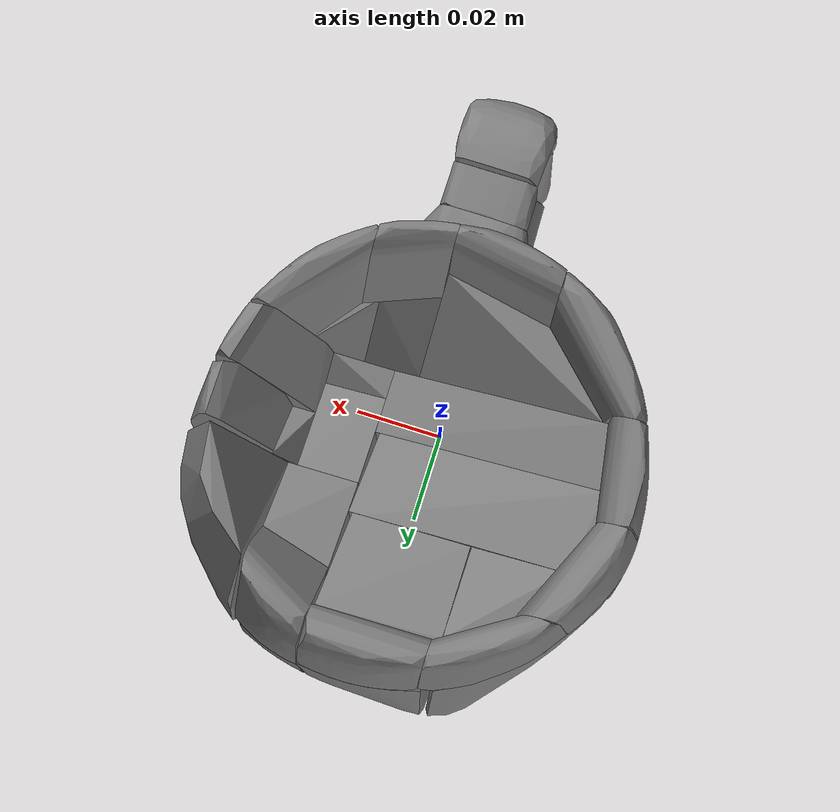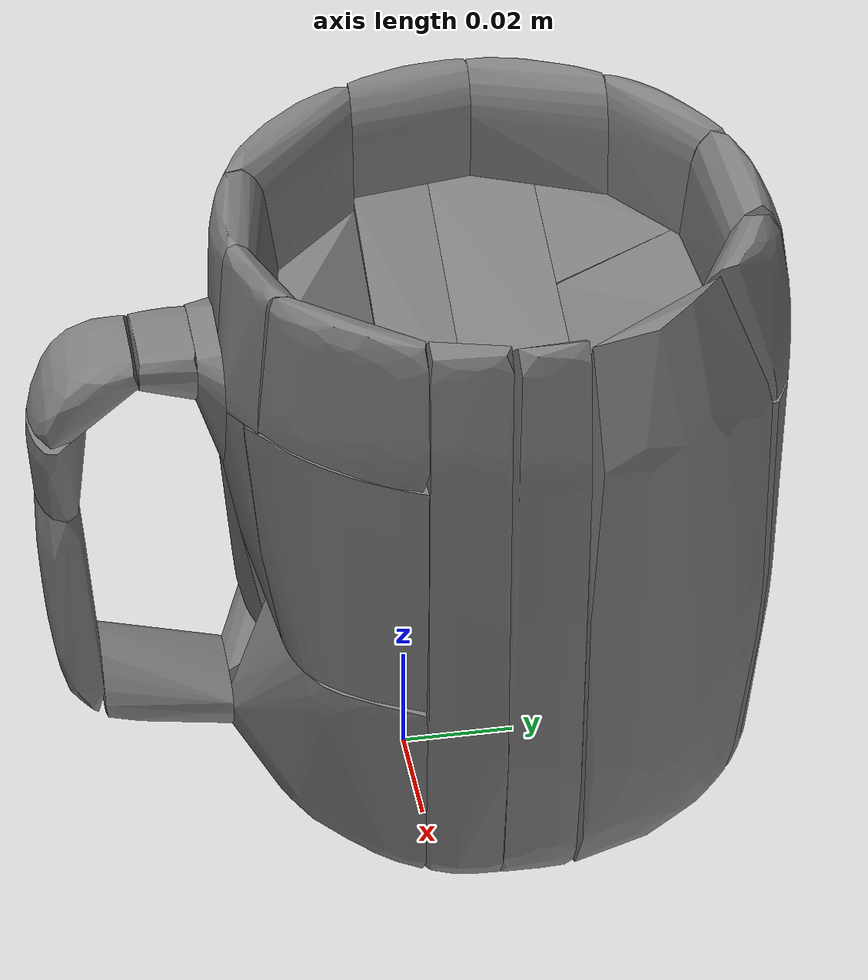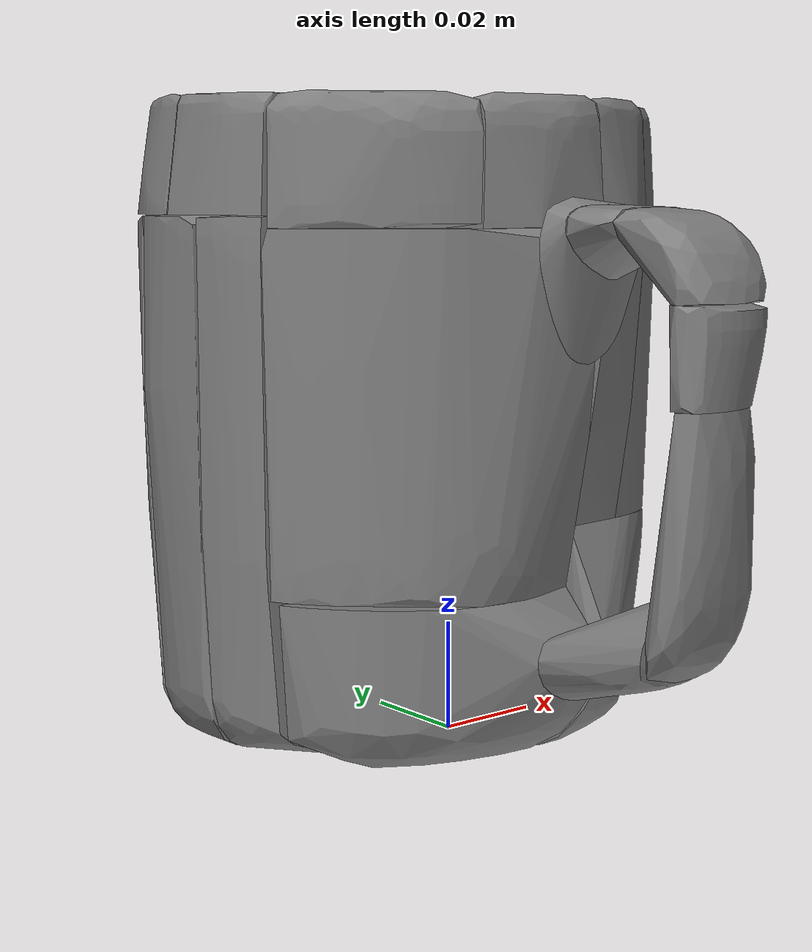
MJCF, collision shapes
<mujoco model="cup">
  <asset>
    <texture type="2d" name="cup_tex" file="Texture.png"/>
    <material name="cup_mat" texture="cup_tex" specular="0.3" shininess="0.1"/>
    <mesh name="cup_vis" file="cup_libero.obj" scale="1 1 1"/>
    <mesh name="cup_col_0" file="cup_col_0.obj" scale="1 1 1"/>
    <mesh name="cup_col_1" file="cup_col_1.obj" scale="1 1 1"/>
    <mesh name="cup_col_2" file="cup_col_2.obj" scale="1 1 1"/>
    <mesh name="cup_col_3" file="cup_col_3.obj" scale="1 1 1"/>
    <mesh name="cup_col_4" file="cup_col_4.obj" scale="1 1 1"/>
    <mesh name="cup_col_5" file="cup_col_5.obj" scale="1 1 1"/>
    <mesh name="cup_col_6" file="cup_col_6.obj" scale="1 1 1"/>
    <mesh name="cup_col_7" file="cup_col_7.obj" scale="1 1 1"/>
    <mesh name="cup_col_8" file="cup_col_8.obj" scale="1 1 1"/>
    <mesh name="cup_col_9" file="cup_col_9.obj" scale="1 1 1"/>
    <mesh name="cup_col_10" file="cup_col_10.obj" scale="1 1 1"/>
    <mesh name="cup_col_11" file="cup_col_11.obj" scale="1 1 1"/>
    <mesh name="cup_col_12" file="cup_col_12.obj" scale="1 1 1"/>
    <mesh name="cup_col_13" file="cup_col_13.obj" scale="1 1 1"/>
    <mesh name="cup_col_14" file="cup_col_14.obj" scale="1 1 1"/>
    <mesh name="cup_col_15" file="cup_col_15.obj" scale="1 1 1"/>
    <mesh name="cup_col_16" file="cup_col_16.obj" scale="1 1 1"/>
    <mesh name="cup_col_17" file="cup_col_17.obj" scale="1 1 1"/>
    <mesh name="cup_col_18" file="cup_col_18.obj" scale="1 1 1"/>
    <mesh name="cup_col_19" file="cup_col_19.obj" scale="1 1 1"/>
    <mesh name="cup_col_20" file="cup_col_20.obj" scale="1 1 1"/>
    <mesh name="cup_col_21" file="cup_col_21.obj" scale="1 1 1"/>
    <mesh name="cup_col_22" file="cup_col_22.obj" scale="1 1 1"/>
    <mesh name="cup_col_23" file="cup_col_23.obj" scale="1 1 1"/>
    <mesh name="cup_col_24" file="cup_col_24.obj" scale="1 1 1"/>
    <mesh name="cup_col_25" file="cup_col_25.obj" scale="1 1 1"/>
    <mesh name="cup_col_26" file="cup_col_26.obj" scale="1 1 1"/>
    <mesh name="cup_col_27" file="cup_col_27.obj" scale="1 1 1"/>
    <mesh name="cup_col_28" file="cup_col_28.obj" scale="1 1 1"/>
    <mesh name="cup_col_29" file="cup_col_29.obj" scale="1 1 1"/>
    <mesh name="cup_col_30" file="cup_col_30.obj" scale="1 1 1"/>
  </asset>
  <worldbody>
    <body>
      <body name="object">
        <geom type="mesh" mesh="cup_vis" material="cup_mat" group="1" contype="0" conaffinity="0"/>
        <geom type="mesh" mesh="cup_col_0" group="0" density="100" friction="0.95 0.3 0.1" solimp="0.998 0.998 0.001" solref="0.001 1"/>
        <geom type="mesh" mesh="cup_col_1" group="0" density="100" friction="0.95 0.3 0.1" solimp="0.998 0.998 0.001" solref="0.001 1"/>
        <geom type="mesh" mesh="cup_col_2" group="0" density="100" friction="0.95 0.3 0.1" solimp="0.998 0.998 0.001" solref="0.001 1"/>
        <geom type="mesh" mesh="cup_col_3" group="0" density="100" friction="0.95 0.3 0.1" solimp="0.998 0.998 0.001" solref="0.001 1"/>
        <geom type="mesh" mesh="cup_col_4" group="0" density="100" friction="0.95 0.3 0.1" solimp="0.998 0.998 0.001" solref="0.001 1"/>
        <geom type="mesh" mesh="cup_col_5" group="0" density="100" friction="0.95 0.3 0.1" solimp="0.998 0.998 0.001" solref="0.001 1"/>
        <geom type="mesh" mesh="cup_col_6" group="0" density="100" friction="0.95 0.3 0.1" solimp="0.998 0.998 0.001" solref="0.001 1"/>
        <geom type="mesh" mesh="cup_col_7" group="0" density="100" friction="0.95 0.3 0.1" solimp="0.998 0.998 0.001" solref="0.001 1"/>
        <geom type="mesh" mesh="cup_col_8" group="0" density="100" friction="0.95 0.3 0.1" solimp="0.998 0.998 0.001" solref="0.001 1"/>
        <geom type="mesh" mesh="cup_col_9" group="0" density="100" friction="0.95 0.3 0.1" solimp="0.998 0.998 0.001" solref="0.001 1"/>
        <geom type="mesh" mesh="cup_col_10" group="0" density="100" friction="0.95 0.3 0.1" solimp="0.998 0.998 0.001" solref="0.001 1"/>
        <geom type="mesh" mesh="cup_col_11" group="0" density="100" friction="0.95 0.3 0.1" solimp="0.998 0.998 0.001" solref="0.001 1"/>
        <geom type="mesh" mesh="cup_col_12" group="0" density="100" friction="0.95 0.3 0.1" solimp="0.998 0.998 0.001" solref="0.001 1"/>
        <geom type="mesh" mesh="cup_col_13" group="0" density="100" friction="0.95 0.3 0.1" solimp="0.998 0.998 0.001" solref="0.001 1"/>
        <geom type="mesh" mesh="cup_col_14" group="0" density="100" friction="0.95 0.3 0.1" solimp="0.998 0.998 0.001" solref="0.001 1"/>
        <geom type="mesh" mesh="cup_col_15" group="0" density="100" friction="0.95 0.3 0.1" solimp="0.998 0.998 0.001" solref="0.001 1"/>
        <geom type="mesh" mesh="cup_col_16" group="0" density="100" friction="0.95 0.3 0.1" solimp="0.998 0.998 0.001" solref="0.001 1"/>
        <geom type="mesh" mesh="cup_col_17" group="0" density="100" friction="0.95 0.3 0.1" solimp="0.998 0.998 0.001" solref="0.001 1"/>
        <geom type="mesh" mesh="cup_col_18" group="0" density="100" friction="0.95 0.3 0.1" solimp="0.998 0.998 0.001" solref="0.001 1"/>
        <geom type="mesh" mesh="cup_col_19" group="0" density="100" friction="0.95 0.3 0.1" solimp="0.998 0.998 0.001" solref="0.001 1"/>
        <geom type="mesh" mesh="cup_col_20" group="0" density="100" friction="0.95 0.3 0.1" solimp="0.998 0.998 0.001" solref="0.001 1"/>
        <geom type="mesh" mesh="cup_col_21" group="0" density="100" friction="0.95 0.3 0.1" solimp="0.998 0.998 0.001" solref="0.001 1"/>
        <geom type="mesh" mesh="cup_col_22" group="0" density="100" friction="0.95 0.3 0.1" solimp="0.998 0.998 0.001" solref="0.001 1"/>
        <geom type="mesh" mesh="cup_col_23" group="0" density="100" friction="0.95 0.3 0.1" solimp="0.998 0.998 0.001" solref="0.001 1"/>
        <geom type="mesh" mesh="cup_col_24" group="0" density="100" friction="0.95 0.3 0.1" solimp="0.998 0.998 0.001" solref="0.001 1"/>
        <geom type="mesh" mesh="cup_col_25" group="0" density="100" friction="0.95 0.3 0.1" solimp="0.998 0.998 0.001" solref="0.001 1"/>
        <geom type="mesh" mesh="cup_col_26" group="0" density="100" friction="0.95 0.3 0.1" solimp="0.998 0.998 0.001" solref="0.001 1"/>
        <geom type="mesh" mesh="cup_col_27" group="0" density="100" friction="0.95 0.3 0.1" solimp="0.998 0.998 0.001" solref="0.001 1"/>
        <geom type="mesh" mesh="cup_col_28" group="0" density="100" friction="0.95 0.3 0.1" solimp="0.998 0.998 0.001" solref="0.001 1"/>
        <geom type="mesh" mesh="cup_col_29" group="0" density="100" friction="0.95 0.3 0.1" solimp="0.998 0.998 0.001" solref="0.001 1"/>
        <geom type="mesh" mesh="cup_col_30" group="0" density="100" friction="0.95 0.3 0.1" solimp="0.998 0.998 0.001" solref="0.001 1"/>
      </body>
      <site rgba="0 0 0 0" size="0.005" pos="0 0 0" name="bottom_site"/>
      <site rgba="0 0 0 0" size="0.005" pos="0 0 0.11516" name="top_site"/>
      <site rgba="0 0 0 0" size="0.005" pos="0.06313 0 0" name="horizontal_radius_site"/>
      <site type="box" rgba="0 0 0 0" pos="0 0 0.06334" size="0.02805 0.03788 0.03455" name="contain_region"/>
    </body>
  </worldbody>
</mujoco>
